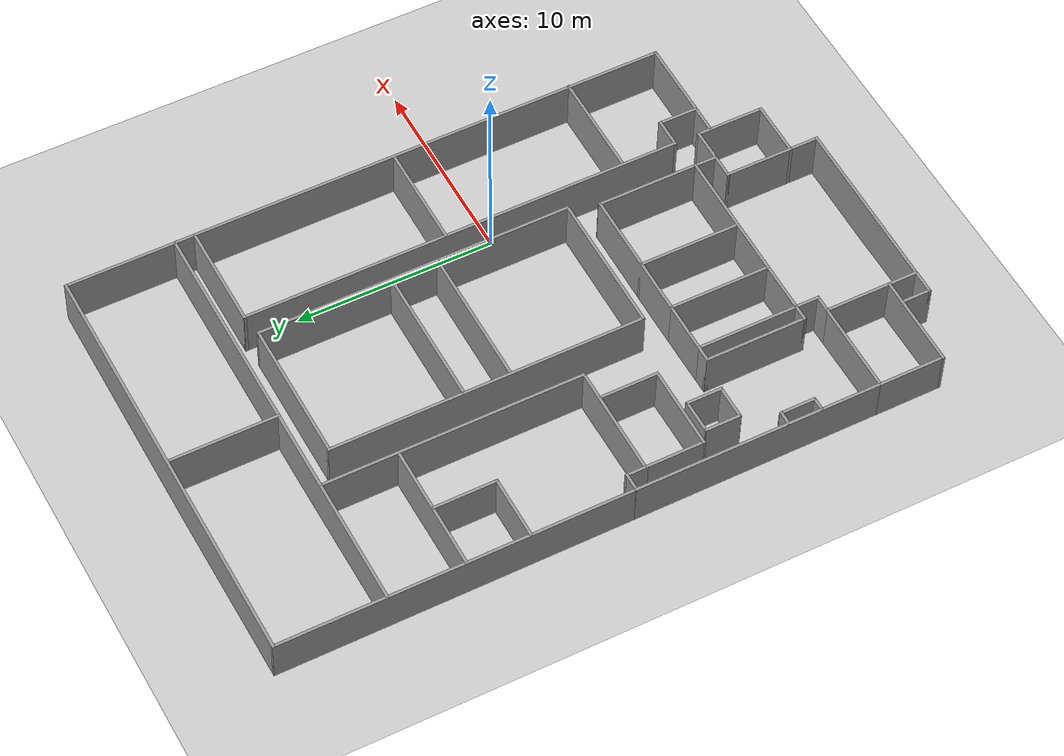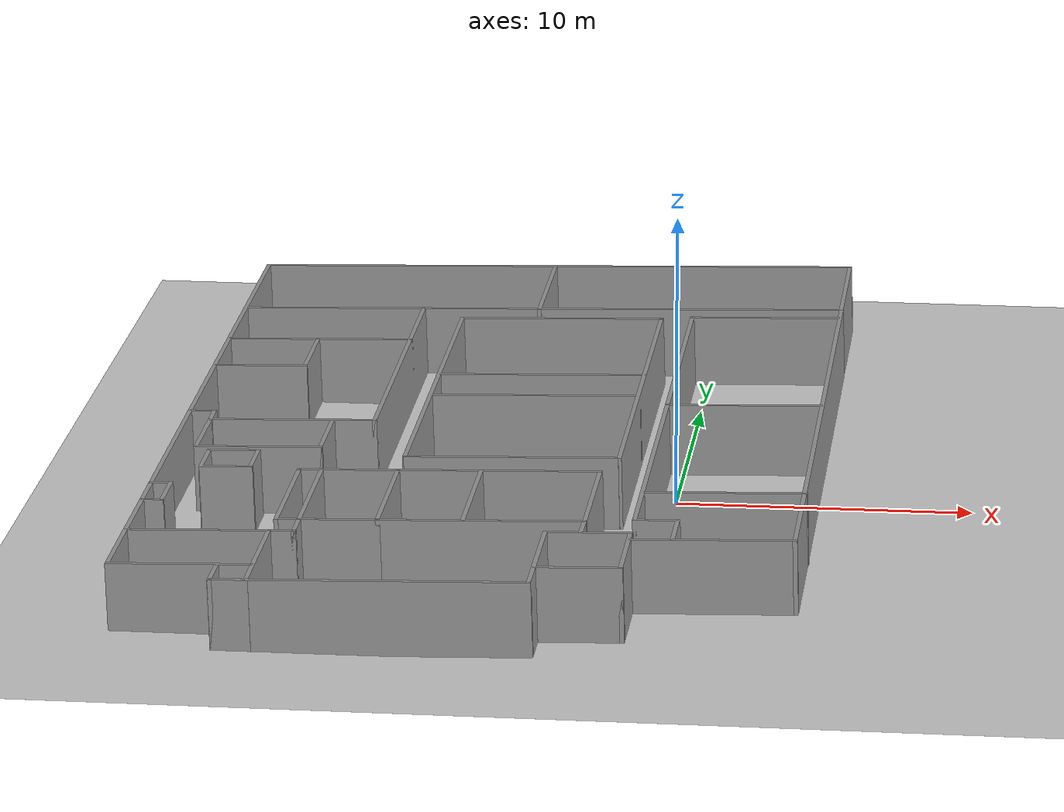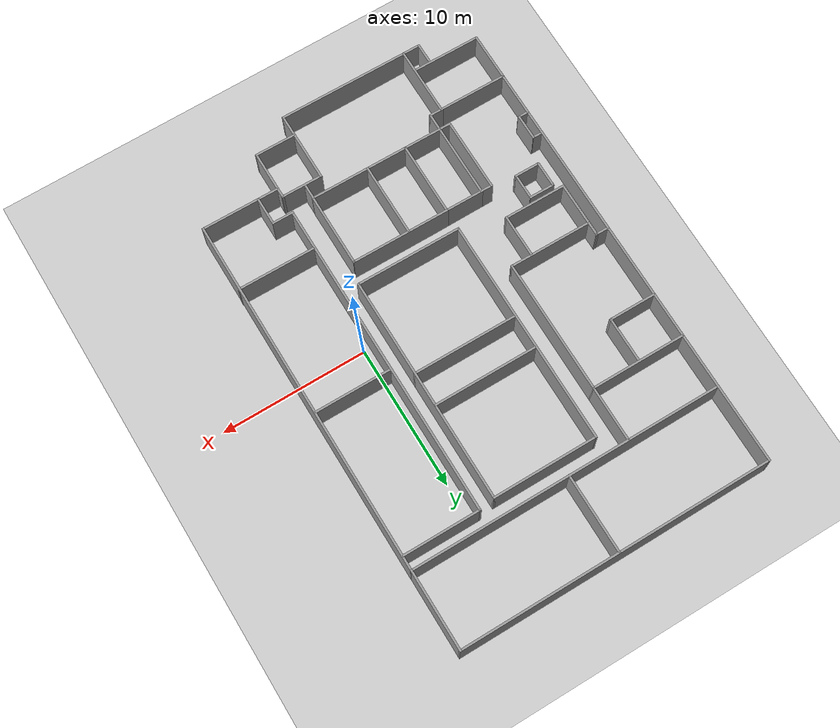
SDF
<sdf version="1.6">
 <world name="default">
  <light name="sun" type="directional">
   <pose>0 0 10 0 -0 0</pose>
   <diffuse>0.8 0.8 0.8 1</diffuse>
   <specular>0.2 0.2 0.2 1</specular>
   <attenuation>
    <range>1000</range>
    <constant>0.9</constant>
    <linear>0.01</linear>
    <quadratic>0.001</quadratic>
   </attenuation>
   <direction>-0.5 0.1 -0.9</direction>
  </light>
  <model name="ground_plane">
   <static>1</static>
   <link name="link">
    <collision name="collision">
     <geometry><plane><normal>0 0 1</normal><size>100 100</size></plane></geometry>
     <surface>
      <contact><collide_bitmask>65535</collide_bitmask></contact>
      <friction><ode><mu>100</mu><mu2>50</mu2></ode></friction>
     </surface>
    </collision>
    <visual name="visual">
     <cast_shadows>0</cast_shadows>
     <geometry><plane><normal>0 0 1</normal><size>100 100</size></plane></geometry>
     <material>
      <script><uri>file://media/materials/scripts/gazebo.material</uri><name>Gazebo/Grey</name></script>
     </material>
    </visual>
   </link>
  </model>
  <gravity>0 0 -9.8</gravity>
  <magnetic_field>6e-06 2.3e-05 -4.2e-05</magnetic_field>
  <atmosphere type="adiabatic"/>
  <physics name="default_physics" default="0" type="ode">
   <max_step_size>0.001</max_step_size>
   <real_time_factor>1</real_time_factor>
   <real_time_update_rate>1000</real_time_update_rate>
  </physics>
  <scene><ambient>0.4 0.4 0.4 1</ambient><background>0.7 0.7 0.7 1</background><shadows>1</shadows></scene>
  <audio><device>default</device></audio>
  <spherical_coordinates>
   <surface_model>EARTH_WGS84</surface_model>
   <latitude_deg>0</latitude_deg>
   <longitude_deg>0</longitude_deg>
   <elevation>0</elevation>
   <heading_deg>0</heading_deg>
  </spherical_coordinates>
  <model name="building4f">
   <pose>-6.01486 1.86504 0 0.026329 -7.5e-05 -1.56794</pose>
   <link name="Wall_0">
    <collision name="Wall_0_Collision">
     <geometry><box><size>17.68 0.15 2.5</size></box></geometry>
     <pose>0 0 1.25 0 -0 0</pose>
    </collision>
    <visual name="Wall_0_Visual">
     <pose>0 0 1.25 0 -0 0</pose>
     <geometry><box><size>17.68 0.15 2.5</size></box></geometry>
     <material>
      <script><uri>file://media/materials/scripts/gazebo.material</uri><name>Gazebo/Grey</name></script>
      <ambient>1 1 1 1</ambient>
     </material>
     <meta><layer>0</layer></meta>
    </visual>
    <pose>-8.62603 -10.8394 0 0 -0 0</pose>
   </link>
   <link name="Wall_100">
    <collision name="Wall_100_Collision">
     <geometry><box><size>9.04 0.15 2.5</size></box></geometry>
     <pose>0 0 1.25 0 -0 0</pose>
    </collision>
    <visual name="Wall_100_Visual">
     <pose>0 0 1.25 0 -0 0</pose>
     <geometry><box><size>9.04 0.15 2.5</size></box></geometry>
     <material>
      <script><uri>file://media/materials/scripts/gazebo.material</uri><name>Gazebo/Grey</name></script>
      <ambient>1 1 1 1</ambient>
     </material>
     <meta><layer>0</layer></meta>
    </visual>
    <pose>17.3842 -1.68912 0 0 -0 -1.5708</pose>
   </link>
   <link name="Wall_128">
    <collision name="Wall_128_Collision">
     <geometry><box><size>6.86 0.15 2.5</size></box></geometry>
     <pose>0 0 1.25 0 -0 0</pose>
    </collision>
    <visual name="Wall_128_Visual">
     <pose>0 0 1.25 0 -0 0</pose>
     <geometry><box><size>6.86 0.15 2.5</size></box></geometry>
     <material>
      <script><uri>file://media/materials/scripts/gazebo.material</uri><name>Gazebo/Grey</name></script>
      <ambient>1 1 1 1</ambient>
     </material>
     <meta><layer>0</layer></meta>
    </visual>
    <pose>11.5245 0.555693 0 0 -0 -1.5708</pose>
   </link>
   <link name="Wall_131">
    <collision name="Wall_131_Collision">
     <geometry><box><size>5.1 0.15 2.5</size></box></geometry>
     <pose>0 0 1.25 0 -0 0</pose>
    </collision>
    <visual name="Wall_131_Visual">
     <pose>0 0 1.25 0 -0 0</pose>
     <geometry><box><size>5.1 0.15 2.5</size></box></geometry>
     <material>
      <script><uri>file://media/materials/scripts/gazebo.material</uri><name>Gazebo/Grey</name></script>
      <ambient>1 1 1 1</ambient>
     </material>
     <meta><layer>0</layer></meta>
    </visual>
    <pose>8.9425 3.92439 0 0 -0 3.14159</pose>
   </link>
   <link name="Wall_139">
    <collision name="Wall_139_Collision">
     <geometry><box><size>6.86 0.15 2.5</size></box></geometry>
     <pose>0 0 1.25 0 -0 0</pose>
    </collision>
    <visual name="Wall_139_Visual">
     <pose>0 0 1.25 0 -0 0</pose>
     <geometry><box><size>6.86 0.15 2.5</size></box></geometry>
     <material>
      <script><uri>file://media/materials/scripts/gazebo.material</uri><name>Gazebo/Grey</name></script>
      <ambient>1 1 1 1</ambient>
     </material>
     <meta><layer>0</layer></meta>
    </visual>
    <pose>6.46732 0.538449 0 0 -0 -1.5708</pose>
   </link>
   <link name="Wall_14">
    <collision name="Wall_14_Collision">
     <geometry><box><size>13.2 0.15 2.5</size></box></geometry>
     <pose>0 0 1.25 0 -0 0</pose>
    </collision>
    <visual name="Wall_14_Visual">
     <pose>0 0 1.25 0 -0 0</pose>
     <geometry><box><size>13.2 0.15 2.5</size></box></geometry>
     <material>
      <script><uri>file://media/materials/scripts/gazebo.material</uri><name>Gazebo/Grey</name></script>
      <ambient>1 1 1 1</ambient>
     </material>
     <meta><layer>0</layer></meta>
    </visual>
    <pose>-5.37558 -4.31833 0 0 -0 0</pose>
   </link>
   <link name="Wall_143">
    <collision name="Wall_143_Collision">
     <geometry><box><size>5.2 0.15 2.5</size></box></geometry>
     <pose>0 0 1.25 0 -0 0</pose>
    </collision>
    <visual name="Wall_143_Visual">
     <pose>0 0 1.25 0 -0 0</pose>
     <geometry><box><size>5.2 0.15 2.5</size></box></geometry>
     <material>
      <script><uri>file://media/materials/scripts/gazebo.material</uri><name>Gazebo/Grey</name></script>
      <ambient>1 1 1 1</ambient>
     </material>
     <meta><layer>0</layer></meta>
    </visual>
    <pose>8.99232 -0.035757 0 0 -0 0</pose>
   </link>
   <link name="Wall_149">
    <collision name="Wall_149_Collision">
     <geometry><box><size>2.7 0.15 2.5</size></box></geometry>
     <pose>0 0 1.25 0 -0 0</pose>
    </collision>
    <visual name="Wall_149_Visual">
     <pose>0 0 1.25 0 -0 0</pose>
     <geometry><box><size>2.7 0.15 2.5</size></box></geometry>
     <material>
      <script><uri>file://media/materials/scripts/gazebo.material</uri><name>Gazebo/Grey</name></script>
      <ambient>1 1 1 1</ambient>
     </material>
     <meta><layer>0</layer></meta>
    </visual>
    <pose>11.5245 -4.07431 0 0 -0 -1.5708</pose>
   </link>
   <link name="Wall_155">
    <collision name="Wall_155_Collision">
     <geometry><box><size>1.3 0.15 2.5</size></box></geometry>
     <pose>0 0 1.25 0 -0 0</pose>
    </collision>
    <visual name="Wall_155_Visual">
     <pose>0 0 1.25 0 -0 0</pose>
     <geometry><box><size>1.3 0.15 2.5</size></box></geometry>
     <material>
      <script><uri>file://media/materials/scripts/gazebo.material</uri><name>Gazebo/Grey</name></script>
      <ambient>1 1 1 1</ambient>
     </material>
     <meta><layer>0</layer></meta>
    </visual>
    <pose>12.0993 -5.36655 0 0 -0 0</pose>
   </link>
   <link name="Wall_16">
    <collision name="Wall_16_Collision">
     <geometry><box><size>3.2 0.15 2.5</size></box></geometry>
     <pose>0 0 1.25 0 -0 0</pose>
    </collision>
    <visual name="Wall_16_Visual">
     <pose>0 0 1.25 0 -0 0</pose>
     <geometry><box><size>3.2 0.15 2.5</size></box></geometry>
     <material>
      <script><uri>file://media/materials/scripts/gazebo.material</uri><name>Gazebo/Grey</name></script>
      <ambient>1 1 1 1</ambient>
     </material>
     <meta><layer>0</layer></meta>
    </visual>
    <pose>-6.54738 -7.63646 0 0 -0 0</pose>
   </link>
   <link name="Wall_171">
    <collision name="Wall_171_Collision">
     <geometry><box><size>5.2 0.15 2.5</size></box></geometry>
     <pose>0 0 1.25 0 -0 0</pose>
    </collision>
    <visual name="Wall_171_Visual">
     <pose>0 0 1.25 0 -0 0</pose>
     <geometry><box><size>5.2 0.15 2.5</size></box></geometry>
     <material>
      <script><uri>file://media/materials/scripts/gazebo.material</uri><name>Gazebo/Grey</name></script>
      <ambient>1 1 1 1</ambient>
     </material>
     <meta><layer>0</layer></meta>
    </visual>
    <pose>8.99232 -2.81655 0 0 -0 0</pose>
   </link>
   <link name="Wall_175">
    <collision name="Wall_175_Collision">
     <geometry><box><size>12.5 0.15 2.5</size></box></geometry>
     <pose>0 0 1.25 0 -0 0</pose>
    </collision>
    <visual name="Wall_175_Visual">
     <pose>0 0 1.25 0 -0 0</pose>
     <geometry><box><size>12.5 0.15 2.5</size></box></geometry>
     <material>
      <script><uri>file://media/materials/scripts/gazebo.material</uri><name>Gazebo/Grey</name></script>
      <ambient>1 1 1 1</ambient>
     </material>
     <meta><layer>0</layer></meta>
    </visual>
    <pose>6.40903 -10.8411 0 0 -0 0</pose>
   </link>
   <link name="Wall_177">
    <collision name="Wall_177_Collision">
     <geometry><box><size>1.17274 0.15 2.5</size></box></geometry>
     <pose>0 0 1.25 0 -0 0</pose>
    </collision>
    <visual name="Wall_177_Visual">
     <pose>0 0 1.25 0 -0 0</pose>
     <geometry><box><size>1.17274 0.15 2.5</size></box></geometry>
     <material>
      <script><uri>file://media/materials/scripts/gazebo.material</uri><name>Gazebo/Grey</name></script>
      <ambient>1 1 1 1</ambient>
     </material>
     <meta><layer>0</layer></meta>
    </visual>
    <pose>0.738747 -9.98332 0 0 -0 0.002707</pose>
   </link>
   <link name="Wall_18">
    <collision name="Wall_18_Collision">
     <geometry><box><size>3.3 0.15 2.5</size></box></geometry>
     <pose>0 0 1.25 0 -0 0</pose>
    </collision>
    <visual name="Wall_18_Visual">
     <pose>0 0 1.25 0 -0 0</pose>
     <geometry><box><size>3.3 0.15 2.5</size></box></geometry>
     <material>
      <script><uri>file://media/materials/scripts/gazebo.material</uri><name>Gazebo/Grey</name></script>
      <ambient>1 1 1 1</ambient>
     </material>
     <meta><layer>0</layer></meta>
    </visual>
    <pose>-4.98556 -9.21034 0 0 -0 -1.5708</pose>
   </link>
   <link name="Wall_185">
    <collision name="Wall_185_Collision">
     <geometry><box><size>3.4 0.15 2.5</size></box></geometry>
     <pose>0 0 1.25 0 -0 0</pose>
    </collision>
    <visual name="Wall_185_Visual">
     <pose>0 0 1.25 0 -0 0</pose>
     <geometry><box><size>3.4 0.15 2.5</size></box></geometry>
     <material>
      <script><uri>file://media/materials/scripts/gazebo.material</uri><name>Gazebo/Grey</name></script>
      <ambient>1 1 1 1</ambient>
     </material>
     <meta><layer>0</layer></meta>
    </visual>
    <pose>14.3306 -10.8478 0 0 -0 0</pose>
   </link>
   <link name="Wall_190">
    <collision name="Wall_190_Collision">
     <geometry><box><size>4.75 0.15 2.5</size></box></geometry>
     <pose>0 0 1.25 0 -0 0</pose>
    </collision>
    <visual name="Wall_190_Visual">
     <pose>0 0 1.25 0 -0 0</pose>
     <geometry><box><size>4.75 0.15 2.5</size></box></geometry>
     <material>
      <script><uri>file://media/materials/scripts/gazebo.material</uri><name>Gazebo/Grey</name></script>
      <ambient>1 1 1 1</ambient>
     </material>
     <meta><layer>0</layer></meta>
    </visual>
    <pose>15.0597 -6.18302 0 0 -0 0</pose>
   </link>
   <link name="Wall_192">
    <collision name="Wall_192_Collision">
     <geometry><box><size>1 0.15 2.5</size></box></geometry>
     <pose>0 0 1.25 0 -0 0</pose>
    </collision>
    <visual name="Wall_192_Visual">
     <pose>0 0 1.25 0 -0 0</pose>
     <geometry><box><size>1 0.15 2.5</size></box></geometry>
     <material>
      <script><uri>file://media/materials/scripts/gazebo.material</uri><name>Gazebo/Grey</name></script>
      <ambient>1 1 1 1</ambient>
     </material>
     <meta><layer>0</layer></meta>
    </visual>
    <pose>12.6743 -5.79155 0 0 -0 -1.5708</pose>
   </link>
   <link name="Wall_194">
    <collision name="Wall_194_Collision">
     <geometry><box><size>4.75 0.15 2.5</size></box></geometry>
     <pose>0 0 1.25 0 -0 0</pose>
    </collision>
    <visual name="Wall_194_Visual">
     <pose>0 0 1.25 0 -0 0</pose>
     <geometry><box><size>4.75 0.15 2.5</size></box></geometry>
     <material>
      <script><uri>file://media/materials/scripts/gazebo.material</uri><name>Gazebo/Grey</name></script>
      <ambient>1 1 1 1</ambient>
     </material>
     <meta><layer>0</layer></meta>
    </visual>
    <pose>15.9556 -8.54784 0 0 -0 1.5708</pose>
   </link>
   <link name="Wall_196">
    <collision name="Wall_196_Collision">
     <geometry><box><size>1.3 0.15 2.5</size></box></geometry>
     <pose>0 0 1.25 0 -0 0</pose>
    </collision>
    <visual name="Wall_196_Visual">
     <pose>0 0 1.25 0 -0 0</pose>
     <geometry><box><size>1.3 0.15 2.5</size></box></geometry>
     <material>
      <script><uri>file://media/materials/scripts/gazebo.material</uri><name>Gazebo/Grey</name></script>
      <ambient>1 1 1 1</ambient>
     </material>
     <meta><layer>0</layer></meta>
    </visual>
    <pose>17.391 -6.75802 0 0 -0 -1.5708</pose>
   </link>
   <link name="Wall_199">
    <collision name="Wall_199_Collision">
     <geometry><box><size>1.5 0.15 2.5</size></box></geometry>
     <pose>0 0 1.25 0 -0 0</pose>
    </collision>
    <visual name="Wall_199_Visual">
     <pose>0 0 1.25 0 -0 0</pose>
     <geometry><box><size>1.5 0.15 2.5</size></box></geometry>
     <material>
      <script><uri>file://media/materials/scripts/gazebo.material</uri><name>Gazebo/Grey</name></script>
      <ambient>1 1 1 1</ambient>
     </material>
     <meta><layer>0</layer></meta>
    </visual>
    <pose>16.716 -7.33302 0 0 -0 3.14159</pose>
   </link>
   <link name="Wall_2">
    <collision name="Wall_2_Collision">
     <geometry><box><size>21.8 0.15 2.5</size></box></geometry>
     <pose>0 0 1.25 0 -0 0</pose>
    </collision>
    <visual name="Wall_2_Visual">
     <pose>0 0 1.25 0 -0 0</pose>
     <geometry><box><size>21.8 0.15 2.5</size></box></geometry>
     <material>
      <script><uri>file://media/materials/scripts/gazebo.material</uri><name>Gazebo/Grey</name></script>
      <ambient>1 1 1 1</ambient>
     </material>
     <meta><layer>0</layer></meta>
    </visual>
    <pose>-17.391 -0.01437 0 0 -0 1.5708</pose>
   </link>
   <link name="Wall_20">
    <collision name="Wall_20_Collision">
     <geometry><box><size>1.0064 0.15 2.5</size></box></geometry>
     <pose>0 0 1.25 0 -0 0</pose>
    </collision>
    <visual name="Wall_20_Visual">
     <pose>0 0 1.25 0 -0 0</pose>
     <geometry><box><size>1.0064 0.15 2.5</size></box></geometry>
     <material>
      <script><uri>file://media/materials/scripts/gazebo.material</uri><name>Gazebo/Grey</name></script>
      <ambient>1 1 1 1</ambient>
     </material>
     <meta><layer>0</layer></meta>
    </visual>
    <pose>0.234031 -10.4129 0 0 -0 1.5708</pose>
   </link>
   <link name="Wall_201">
    <collision name="Wall_201_Collision">
     <geometry><box><size>4.7 0.15 2.5</size></box></geometry>
     <pose>0 0 1.25 0 -0 0</pose>
    </collision>
    <visual name="Wall_201_Visual">
     <pose>0 0 1.25 0 -0 0</pose>
     <geometry><box><size>4.7 0.15 2.5</size></box></geometry>
     <material>
      <script><uri>file://media/materials/scripts/gazebo.material</uri><name>Gazebo/Grey</name></script>
      <ambient>1 1 1 1</ambient>
     </material>
     <meta><layer>0</layer></meta>
    </visual>
    <pose>12.6743 -8.49155 0 0 -0 -1.5708</pose>
   </link>
   <link name="Wall_203">
    <collision name="Wall_203_Collision">
     <geometry><box><size>3 0.15 2.5</size></box></geometry>
     <pose>0 0 1.25 0 -0 0</pose>
    </collision>
    <visual name="Wall_203_Visual">
     <pose>0 0 1.25 0 -0 0</pose>
     <geometry><box><size>3 0.15 2.5</size></box></geometry>
     <material>
      <script><uri>file://media/materials/scripts/gazebo.material</uri><name>Gazebo/Grey</name></script>
      <ambient>1 1 1 1</ambient>
     </material>
     <meta><layer>0</layer></meta>
    </visual>
    <pose>2.67511 -9.98193 0 0 -0 0</pose>
   </link>
   <link name="Wall_205">
    <collision name="Wall_205_Collision">
     <geometry><box><size>4.37 0.15 2.5</size></box></geometry>
     <pose>0 0 1.25 0 -0 0</pose>
    </collision>
    <visual name="Wall_205_Visual">
     <pose>0 0 1.25 0 -0 0</pose>
     <geometry><box><size>4.37 0.15 2.5</size></box></geometry>
     <material>
      <script><uri>file://media/materials/scripts/gazebo.material</uri><name>Gazebo/Grey</name></script>
      <ambient>1 1 1 1</ambient>
     </material>
     <meta><layer>0</layer></meta>
    </visual>
    <pose>4.10011 -7.87193 0 0 -0 1.5708</pose>
   </link>
   <link name="Wall_207">
    <collision name="Wall_207_Collision">
     <geometry><box><size>3 0.15 2.5</size></box></geometry>
     <pose>0 0 1.25 0 -0 0</pose>
    </collision>
    <visual name="Wall_207_Visual">
     <pose>0 0 1.25 0 -0 0</pose>
     <geometry><box><size>3 0.15 2.5</size></box></geometry>
     <material>
      <script><uri>file://media/materials/scripts/gazebo.material</uri><name>Gazebo/Grey</name></script>
      <ambient>1 1 1 1</ambient>
     </material>
     <meta><layer>0</layer></meta>
    </visual>
    <pose>2.67511 -5.76193 0 0 -0 3.14159</pose>
   </link>
   <link name="Wall_211">
    <collision name="Wall_211_Collision">
     <geometry><box><size>2.7 0.15 2.5</size></box></geometry>
     <pose>0 0 1.25 0 -0 0</pose>
    </collision>
    <visual name="Wall_211_Visual">
     <pose>0 0 1.25 0 -0 0</pose>
     <geometry><box><size>2.7 0.15 2.5</size></box></geometry>
     <material>
      <script><uri>file://media/materials/scripts/gazebo.material</uri><name>Gazebo/Grey</name></script>
      <ambient>1 1 1 1</ambient>
     </material>
     <meta><layer>0</layer></meta>
    </visual>
    <pose>6.46732 -4.09155 0 0 -0 -1.5708</pose>
   </link>
   <link name="Wall_213">
    <collision name="Wall_213_Collision">
     <geometry><box><size>5.207 0.15 2.5</size></box></geometry>
     <pose>0 0 1.25 0 -0 0</pose>
    </collision>
    <visual name="Wall_213_Visual">
     <pose>0 0 1.25 0 -0 0</pose>
     <geometry><box><size>5.207 0.15 2.5</size></box></geometry>
     <material>
      <script><uri>file://media/materials/scripts/gazebo.material</uri><name>Gazebo/Grey</name></script>
      <ambient>1 1 1 1</ambient>
     </material>
     <meta><layer>0</layer></meta>
    </visual>
    <pose>8.99582 -5.36655 0 0 -0 0</pose>
   </link>
   <link name="Wall_222">
    <collision name="Wall_222_Collision">
     <geometry><box><size>1.8 0.15 2.5</size></box></geometry>
     <pose>0 0 1.25 0 -0 0</pose>
    </collision>
    <visual name="Wall_222_Visual">
     <pose>0 0 1.25 0 -0 0</pose>
     <geometry><box><size>1.8 0.15 2.5</size></box></geometry>
     <material>
      <script><uri>file://media/materials/scripts/gazebo.material</uri><name>Gazebo/Grey</name></script>
      <ambient>1 1 1 1</ambient>
     </material>
     <meta><layer>0</layer></meta>
    </visual>
    <pose>4.49659 -8.63754 0 0 -0 -1.5708</pose>
   </link>
   <link name="Wall_224">
    <collision name="Wall_224_Collision">
     <geometry><box><size>1.8 0.15 2.5</size></box></geometry>
     <pose>0 0 1.25 0 -0 0</pose>
    </collision>
    <visual name="Wall_224_Visual">
     <pose>0 0 1.25 0 -0 0</pose>
     <geometry><box><size>1.8 0.15 2.5</size></box></geometry>
     <material>
      <script><uri>file://media/materials/scripts/gazebo.material</uri><name>Gazebo/Grey</name></script>
      <ambient>1 1 1 1</ambient>
     </material>
     <meta><layer>0</layer></meta>
    </visual>
    <pose>5.3676 -7.80173 0 0 -0 0</pose>
   </link>
   <link name="Wall_226">
    <collision name="Wall_226_Collision">
     <geometry><box><size>1.8 0.15 2.5</size></box></geometry>
     <pose>0 0 1.25 0 -0 0</pose>
    </collision>
    <visual name="Wall_226_Visual">
     <pose>0 0 1.25 0 -0 0</pose>
     <geometry><box><size>1.8 0.15 2.5</size></box></geometry>
     <material>
      <script><uri>file://media/materials/scripts/gazebo.material</uri><name>Gazebo/Grey</name></script>
      <ambient>1 1 1 1</ambient>
     </material>
     <meta><layer>0</layer></meta>
    </visual>
    <pose>5.36838 -9.46714 0 0 -0 0</pose>
   </link>
   <link name="Wall_228">
    <collision name="Wall_228_Collision">
     <geometry><box><size>1.8 0.15 2.5</size></box></geometry>
     <pose>0 0 1.25 0 -0 0</pose>
    </collision>
    <visual name="Wall_228_Visual">
     <pose>0 0 1.25 0 -0 0</pose>
     <geometry><box><size>1.8 0.15 2.5</size></box></geometry>
     <material>
      <script><uri>file://media/materials/scripts/gazebo.material</uri><name>Gazebo/Grey</name></script>
      <ambient>1 1 1 1</ambient>
     </material>
     <meta><layer>0</layer></meta>
    </visual>
    <pose>6.22538 -8.61853 0 0 -0 -1.5708</pose>
   </link>
   <link name="Wall_230">
    <collision name="Wall_230_Collision">
     <geometry><box><size>0.9 0.15 2.5</size></box></geometry>
     <pose>0 0 1.25 0 -0 0</pose>
    </collision>
    <visual name="Wall_230_Visual">
     <pose>0 0 1.25 0 -0 0</pose>
     <geometry><box><size>0.9 0.15 2.5</size></box></geometry>
     <material>
      <script><uri>file://media/materials/scripts/gazebo.material</uri><name>Gazebo/Grey</name></script>
      <ambient>1 1 1 1</ambient>
     </material>
     <meta><layer>0</layer></meta>
    </visual>
    <pose>6.46732 -5.74155 0 0 -0 -1.5708</pose>
   </link>
   <link name="Wall_232">
    <collision name="Wall_232_Collision">
     <geometry><box><size>5.207 0.15 2.5</size></box></geometry>
     <pose>0 0 1.25 0 -0 0</pose>
    </collision>
    <visual name="Wall_232_Visual">
     <pose>0 0 1.25 0 -0 0</pose>
     <geometry><box><size>5.207 0.15 2.5</size></box></geometry>
     <material>
      <script><uri>file://media/materials/scripts/gazebo.material</uri><name>Gazebo/Grey</name></script>
      <ambient>1 1 1 1</ambient>
     </material>
     <meta><layer>0</layer></meta>
    </visual>
    <pose>8.99582 -6.11655 0 0 -0 0</pose>
   </link>
   <link name="Wall_234">
    <collision name="Wall_234_Collision">
     <geometry><box><size>0.9 0.15 2.5</size></box></geometry>
     <pose>0 0 1.25 0 -0 0</pose>
    </collision>
    <visual name="Wall_234_Visual">
     <pose>0 0 1.25 0 -0 0</pose>
     <geometry><box><size>0.9 0.15 2.5</size></box></geometry>
     <material>
      <script><uri>file://media/materials/scripts/gazebo.material</uri><name>Gazebo/Grey</name></script>
      <ambient>1 1 1 1</ambient>
     </material>
     <meta><layer>0</layer></meta>
    </visual>
    <pose>11.5243 -5.74155 0 0 -0 1.5708</pose>
   </link>
   <link name="Wall_255">
    <collision name="Wall_255_Collision">
     <geometry><box><size>15.95 0.15 2.5</size></box></geometry>
     <pose>0 0 1.25 0 -0 0</pose>
    </collision>
    <visual name="Wall_255_Visual">
     <pose>0 0 1.25 0 -0 0</pose>
     <geometry><box><size>15.95 0.15 2.5</size></box></geometry>
     <material>
      <script><uri>file://media/materials/scripts/gazebo.material</uri><name>Gazebo/Grey</name></script>
      <ambient>1 1 1 1</ambient>
     </material>
     <meta><layer>0</layer></meta>
    </visual>
    <pose>-2.87929 4.42125 0 0 -0 0</pose>
   </link>
   <link name="Wall_257">
    <collision name="Wall_257_Collision">
     <geometry><box><size>15.95 0.15 2.5</size></box></geometry>
     <pose>0 0 1.25 0 -0 0</pose>
    </collision>
    <visual name="Wall_257_Visual">
     <pose>0 0 1.25 0 -0 0</pose>
     <geometry><box><size>15.95 0.15 2.5</size></box></geometry>
     <material>
      <script><uri>file://media/materials/scripts/gazebo.material</uri><name>Gazebo/Grey</name></script>
      <ambient>1 1 1 1</ambient>
     </material>
     <meta><layer>0</layer></meta>
    </visual>
    <pose>-2.87929 -2.77083 0 0 -0 0</pose>
   </link>
   <link name="Wall_259">
    <collision name="Wall_259_Collision">
     <geometry><box><size>7.2 0.15 2.5</size></box></geometry>
     <pose>0 0 1.25 0 -0 0</pose>
    </collision>
    <visual name="Wall_259_Visual">
     <pose>0 0 1.25 0 -0 0</pose>
     <geometry><box><size>7.2 0.15 2.5</size></box></geometry>
     <material>
      <script><uri>file://media/materials/scripts/gazebo.material</uri><name>Gazebo/Grey</name></script>
      <ambient>1 1 1 1</ambient>
     </material>
     <meta><layer>0</layer></meta>
    </visual>
    <pose>-10.7793 0.896249 0 0 -0 -1.5708</pose>
   </link>
   <link name="Wall_26">
    <collision name="Wall_26_Collision">
     <geometry><box><size>5.58 0.15 2.5</size></box></geometry>
     <pose>0 0 1.25 0 -0 0</pose>
    </collision>
    <visual name="Wall_26_Visual">
     <pose>0 0 1.25 0 -0 0</pose>
     <geometry><box><size>5.58 0.15 2.5</size></box></geometry>
     <material>
      <script><uri>file://media/materials/scripts/gazebo.material</uri><name>Gazebo/Grey</name></script>
      <ambient>1 1 1 1</ambient>
     </material>
     <meta><layer>0</layer></meta>
    </visual>
    <pose>-14.676 10.8106 0 0 -0 0</pose>
   </link>
   <link name="Wall_261">
    <collision name="Wall_261_Collision">
     <geometry><box><size>7.2 0.15 2.5</size></box></geometry>
     <pose>0 0 1.25 0 -0 0</pose>
    </collision>
    <visual name="Wall_261_Visual">
     <pose>0 0 1.25 0 -0 0</pose>
     <geometry><box><size>7.2 0.15 2.5</size></box></geometry>
     <material>
      <script><uri>file://media/materials/scripts/gazebo.material</uri><name>Gazebo/Grey</name></script>
      <ambient>1 1 1 1</ambient>
     </material>
     <meta><layer>0</layer></meta>
    </visual>
    <pose>5.03612 0.788905 0 0 -0 -1.5708</pose>
   </link>
   <link name="Wall_268">
    <collision name="Wall_268_Collision">
     <geometry><box><size>7.2 0.15 2.5</size></box></geometry>
     <pose>0 0 1.25 0 -0 0</pose>
    </collision>
    <visual name="Wall_268_Visual">
     <pose>0 0 1.25 0 -0 0</pose>
     <geometry><box><size>7.2 0.15 2.5</size></box></geometry>
     <material>
      <script><uri>file://media/materials/scripts/gazebo.material</uri><name>Gazebo/Grey</name></script>
      <ambient>1 1 1 1</ambient>
     </material>
     <meta><layer>0</layer></meta>
    </visual>
    <pose>-4.08816 0.860468 0 0 -0 -1.5708</pose>
   </link>
   <link name="Wall_270">
    <collision name="Wall_270_Collision">
     <geometry><box><size>7.2 0.15 2.5</size></box></geometry>
     <pose>0 0 1.25 0 -0 0</pose>
    </collision>
    <visual name="Wall_270_Visual">
     <pose>0 0 1.25 0 -0 0</pose>
     <geometry><box><size>7.2 0.15 2.5</size></box></geometry>
     <material>
      <script><uri>file://media/materials/scripts/gazebo.material</uri><name>Gazebo/Grey</name></script>
      <ambient>1 1 1 1</ambient>
     </material>
     <meta><layer>0</layer></meta>
    </visual>
    <pose>-1.72658 0.8973 0 0 -0 1.5708</pose>
   </link>
   <link name="Wall_272">
    <collision name="Wall_272_Collision">
     <geometry><box><size>5.7 0.15 2.5</size></box></geometry>
     <pose>0 0 1.25 0 -0 0</pose>
    </collision>
    <visual name="Wall_272_Visual">
     <pose>0 0 1.25 0 -0 0</pose>
     <geometry><box><size>5.7 0.15 2.5</size></box></geometry>
     <material>
      <script><uri>file://media/materials/scripts/gazebo.material</uri><name>Gazebo/Grey</name></script>
      <ambient>1 1 1 1</ambient>
     </material>
     <meta><layer>0</layer></meta>
    </visual>
    <pose>1.14942 -7.09333 0 0 -0 -1.5708</pose>
   </link>
   <link name="Wall_274">
    <collision name="Wall_274_Collision">
     <geometry><box><size>1.8 0.15 2.5</size></box></geometry>
     <pose>0 0 1.25 0 -0 0</pose>
    </collision>
    <visual name="Wall_274_Visual">
     <pose>0 0 1.25 0 -0 0</pose>
     <geometry><box><size>1.8 0.15 2.5</size></box></geometry>
     <material>
      <script><uri>file://media/materials/scripts/gazebo.material</uri><name>Gazebo/Grey</name></script>
      <ambient>1 1 1 1</ambient>
     </material>
     <meta><layer>0</layer></meta>
    </visual>
    <pose>8.77861 -10.1859 0 0 -0 0</pose>
   </link>
   <link name="Wall_276">
    <collision name="Wall_276_Collision">
     <geometry><box><size>0.75 0.15 2.5</size></box></geometry>
     <pose>0 0 1.25 0 -0 0</pose>
    </collision>
    <visual name="Wall_276_Visual">
     <pose>0 0 1.25 0 -0 0</pose>
     <geometry><box><size>0.75 0.15 2.5</size></box></geometry>
     <material>
      <script><uri>file://media/materials/scripts/gazebo.material</uri><name>Gazebo/Grey</name></script>
      <ambient>1 1 1 1</ambient>
     </material>
     <meta><layer>0</layer></meta>
    </visual>
    <pose>9.64926 -10.5026 0 0 -0 -1.5708</pose>
   </link>
   <link name="Wall_279">
    <collision name="Wall_279_Collision">
     <geometry><box><size>0.75 0.15 2.5</size></box></geometry>
     <pose>0 0 1.25 0 -0 0</pose>
    </collision>
    <visual name="Wall_279_Visual">
     <pose>0 0 1.25 0 -0 0</pose>
     <geometry><box><size>0.75 0.15 2.5</size></box></geometry>
     <material>
      <script><uri>file://media/materials/scripts/gazebo.material</uri><name>Gazebo/Grey</name></script>
      <ambient>1 1 1 1</ambient>
     </material>
     <meta><layer>0</layer></meta>
    </visual>
    <pose>7.95123 -10.523 0 0 -0 -1.5708</pose>
   </link>
   <link name="Wall_30">
    <collision name="Wall_30_Collision">
     <geometry><box><size>21.75 0.15 2.5</size></box></geometry>
     <pose>0 0 1.25 0 -0 0</pose>
    </collision>
    <visual name="Wall_30_Visual">
     <pose>0 0 1.25 0 -0 0</pose>
     <geometry><box><size>21.75 0.15 2.5</size></box></geometry>
     <material>
      <script><uri>file://media/materials/scripts/gazebo.material</uri><name>Gazebo/Grey</name></script>
      <ambient>1 1 1 1</ambient>
     </material>
     <meta><layer>0</layer></meta>
    </visual>
    <pose>-11.961 0.01063 0 0 -0 -1.5708</pose>
   </link>
   <link name="Wall_34">
    <collision name="Wall_34_Collision">
     <geometry><box><size>25.26 0.15 2.5</size></box></geometry>
     <pose>0 0 1.25 0 -0 0</pose>
    </collision>
    <visual name="Wall_34_Visual">
     <pose>0 0 1.25 0 -0 0</pose>
     <geometry><box><size>25.26 0.15 2.5</size></box></geometry>
     <material>
      <script><uri>file://media/materials/scripts/gazebo.material</uri><name>Gazebo/Grey</name></script>
      <ambient>1 1 1 1</ambient>
     </material>
     <meta><layer>0</layer></meta>
    </visual>
    <pose>0.672249 10.8179 0 0 -0 0</pose>
   </link>
   <link name="Wall_4">
    <collision name="Wall_4_Collision">
     <geometry><box><size>5.58 0.15 2.5</size></box></geometry>
     <pose>0 0 1.25 0 -0 0</pose>
    </collision>
    <visual name="Wall_4_Visual">
     <pose>0 0 1.25 0 -0 0</pose>
     <geometry><box><size>5.58 0.15 2.5</size></box></geometry>
     <material>
      <script><uri>file://media/materials/scripts/gazebo.material</uri><name>Gazebo/Grey</name></script>
      <ambient>1 1 1 1</ambient>
     </material>
     <meta><layer>0</layer></meta>
    </visual>
    <pose>-14.6694 -0.103991 0 0 -0 0</pose>
   </link>
   <link name="Wall_46">
    <collision name="Wall_46_Collision">
     <geometry><box><size>5.37 0.15 2.5</size></box></geometry>
     <pose>0 0 1.25 0 -0 0</pose>
    </collision>
    <visual name="Wall_46_Visual">
     <pose>0 0 1.25 0 -0 0</pose>
     <geometry><box><size>5.37 0.15 2.5</size></box></geometry>
     <material>
      <script><uri>file://media/materials/scripts/gazebo.material</uri><name>Gazebo/Grey</name></script>
      <ambient>1 1 1 1</ambient>
     </material>
     <meta><layer>0</layer></meta>
    </visual>
    <pose>13.2272 8.20794 0 0 -0 -1.5708</pose>
   </link>
   <link name="Wall_52">
    <collision name="Wall_52_Collision">
     <geometry><box><size>5.37 0.15 2.5</size></box></geometry>
     <pose>0 0 1.25 0 -0 0</pose>
    </collision>
    <visual name="Wall_52_Visual">
     <pose>0 0 1.25 0 -0 0</pose>
     <geometry><box><size>5.37 0.15 2.5</size></box></geometry>
     <material>
      <script><uri>file://media/materials/scripts/gazebo.material</uri><name>Gazebo/Grey</name></script>
      <ambient>1 1 1 1</ambient>
     </material>
     <meta><layer>0</layer></meta>
    </visual>
    <pose>-10.9647 8.12956 0 0 -0 -1.5708</pose>
   </link>
   <link name="Wall_54">
    <collision name="Wall_54_Collision">
     <geometry><box><size>5.37 0.15 2.5</size></box></geometry>
     <pose>0 0 1.25 0 -0 0</pose>
    </collision>
    <visual name="Wall_54_Visual">
     <pose>0 0 1.25 0 -0 0</pose>
     <geometry><box><size>5.37 0.15 2.5</size></box></geometry>
     <material>
      <script><uri>file://media/materials/scripts/gazebo.material</uri><name>Gazebo/Grey</name></script>
      <ambient>1 1 1 1</ambient>
     </material>
     <meta><layer>0</layer></meta>
    </visual>
    <pose>-0.733302 8.14812 0 0 -0 -1.5708</pose>
   </link>
   <link name="Wall_56">
    <collision name="Wall_56_Collision">
     <geometry><box><size>5.37 0.15 2.5</size></box></geometry>
     <pose>0 0 1.25 0 -0 0</pose>
    </collision>
    <visual name="Wall_56_Visual">
     <pose>0 0 1.25 0 -0 0</pose>
     <geometry><box><size>5.37 0.15 2.5</size></box></geometry>
     <material>
      <script><uri>file://media/materials/scripts/gazebo.material</uri><name>Gazebo/Grey</name></script>
      <ambient>1 1 1 1</ambient>
     </material>
     <meta><layer>0</layer></meta>
    </visual>
    <pose>8.54829 8.23784 0 0 -0 -1.5708</pose>
   </link>
   <link name="Wall_58">
    <collision name="Wall_58_Collision">
     <geometry><box><size>22.44 0.15 2.5</size></box></geometry>
     <pose>0 0 1.25 0 -0 0</pose>
    </collision>
    <visual name="Wall_58_Visual">
     <pose>0 0 1.25 0 -0 0</pose>
     <geometry><box><size>22.44 0.15 2.5</size></box></geometry>
     <material>
      <script><uri>file://media/materials/scripts/gazebo.material</uri><name>Gazebo/Grey</name></script>
      <ambient>1 1 1 1</ambient>
     </material>
     <meta><layer>0</layer></meta>
    </visual>
    <pose>0.180291 5.51956 0 0 -0 0</pose>
   </link>
   <link name="Wall_73">
    <collision name="Wall_73_Collision">
     <geometry><box><size>3.51 0.15 2.5</size></box></geometry>
     <pose>0 0 1.25 0 -0 0</pose>
    </collision>
    <visual name="Wall_73_Visual">
     <pose>0 0 1.25 0 -0 0</pose>
     <geometry><box><size>3.51 0.15 2.5</size></box></geometry>
     <material>
      <script><uri>file://media/materials/scripts/gazebo.material</uri><name>Gazebo/Grey</name></script>
      <ambient>1 1 1 1</ambient>
     </material>
     <meta><layer>0</layer></meta>
    </visual>
    <pose>14.2732 5.50588 0 0 -0 0</pose>
   </link>
   <link name="Wall_75">
    <collision name="Wall_75_Collision">
     <geometry><box><size>2.90017 0.15 2.5</size></box></geometry>
     <pose>0 0 1.25 0 -0 0</pose>
    </collision>
    <visual name="Wall_75_Visual">
     <pose>0 0 1.25 0 -0 0</pose>
     <geometry><box><size>2.90017 0.15 2.5</size></box></geometry>
     <material>
      <script><uri>file://media/materials/scripts/gazebo.material</uri><name>Gazebo/Grey</name></script>
      <ambient>1 1 1 1</ambient>
     </material>
     <meta><layer>0</layer></meta>
    </visual>
    <pose>15.9532 4.13088 0 0 -0 -1.5708</pose>
   </link>
   <link name="Wall_8">
    <collision name="Wall_8_Collision">
     <geometry><box><size>6.6 0.15 2.5</size></box></geometry>
     <pose>0 0 1.25 0 -0 0</pose>
    </collision>
    <visual name="Wall_8_Visual">
     <pose>0 0 1.25 0 -0 0</pose>
     <geometry><box><size>6.6 0.15 2.5</size></box></geometry>
     <material>
      <script><uri>file://media/materials/scripts/gazebo.material</uri><name>Gazebo/Grey</name></script>
      <ambient>1 1 1 1</ambient>
     </material>
     <meta><layer>0</layer></meta>
    </visual>
    <pose>-8.1386 -7.54333 0 0 -0 -1.5708</pose>
   </link>
   <link name="Wall_81">
    <collision name="Wall_81_Collision">
     <geometry><box><size>2.9 0.15 2.5</size></box></geometry>
     <pose>0 0 1.25 0 -0 0</pose>
    </collision>
    <visual name="Wall_81_Visual">
     <pose>0 0 1.25 0 -0 0</pose>
     <geometry><box><size>2.9 0.15 2.5</size></box></geometry>
     <material>
      <script><uri>file://media/materials/scripts/gazebo.material</uri><name>Gazebo/Grey</name></script>
      <ambient>1 1 1 1</ambient>
     </material>
     <meta><layer>0</layer></meta>
    </visual>
    <pose>12.5932 4.13088 0 0 -0 -1.5708</pose>
   </link>
   <link name="Wall_83">
    <collision name="Wall_83_Collision">
     <geometry><box><size>3.51 0.15 2.5</size></box></geometry>
     <pose>0 0 1.25 0 -0 0</pose>
    </collision>
    <visual name="Wall_83_Visual">
     <pose>0 0 1.25 0 -0 0</pose>
     <geometry><box><size>3.51 0.15 2.5</size></box></geometry>
     <material>
      <script><uri>file://media/materials/scripts/gazebo.material</uri><name>Gazebo/Grey</name></script>
      <ambient>1 1 1 1</ambient>
     </material>
     <meta><layer>0</layer></meta>
    </visual>
    <pose>14.2732 2.75588 0 0 -0 0</pose>
   </link>
   <link name="Wall_85">
    <collision name="Wall_85_Collision">
     <geometry><box><size>1.19 0.15 2.5</size></box></geometry>
     <pose>0 0 1.25 0 -0 0</pose>
    </collision>
    <visual name="Wall_85_Visual">
     <pose>0 0 1.25 0 -0 0</pose>
     <geometry><box><size>1.19 0.15 2.5</size></box></geometry>
     <material>
      <script><uri>file://media/materials/scripts/gazebo.material</uri><name>Gazebo/Grey</name></script>
      <ambient>1 1 1 1</ambient>
     </material>
     <meta><layer>0</layer></meta>
    </visual>
    <pose>12.0445 3.91069 0 0 -0 0</pose>
   </link>
   <link name="Wall_91">
    <collision name="Wall_91_Collision">
     <geometry><box><size>1.55 0.15 2.5</size></box></geometry>
     <pose>0 0 1.25 0 -0 0</pose>
    </collision>
    <visual name="Wall_91_Visual">
     <pose>0 0 1.25 0 -0 0</pose>
     <geometry><box><size>1.55 0.15 2.5</size></box></geometry>
     <material>
      <script><uri>file://media/materials/scripts/gazebo.material</uri><name>Gazebo/Grey</name></script>
      <ambient>1 1 1 1</ambient>
     </material>
     <meta><layer>0</layer></meta>
    </visual>
    <pose>16.6842 2.75588 0 0 -0 0</pose>
   </link>
   <link name="Wall_96">
    <collision name="Wall_96_Collision">
     <geometry><box><size>1.54 0.15 2.5</size></box></geometry>
     <pose>0 0 1.25 0 -0 0</pose>
    </collision>
    <visual name="Wall_96_Visual">
     <pose>0 0 1.25 0 -0 0</pose>
     <geometry><box><size>1.54 0.15 2.5</size></box></geometry>
     <material>
      <script><uri>file://media/materials/scripts/gazebo.material</uri><name>Gazebo/Grey</name></script>
      <ambient>1 1 1 1</ambient>
     </material>
     <meta><layer>0</layer></meta>
    </visual>
    <pose>11.3253 6.21455 0 0 -0 1.5708</pose>
   </link>
   <link name="Wall_98">
    <collision name="Wall_98_Collision">
     <geometry><box><size>2 0.15 2.5</size></box></geometry>
     <pose>0 0 1.25 0 -0 0</pose>
    </collision>
    <visual name="Wall_98_Visual">
     <pose>0 0 1.25 0 -0 0</pose>
     <geometry><box><size>2 0.15 2.5</size></box></geometry>
     <material>
      <script><uri>file://media/materials/scripts/gazebo.material</uri><name>Gazebo/Grey</name></script>
      <ambient>1 1 1 1</ambient>
     </material>
     <meta><layer>0</layer></meta>
    </visual>
    <pose>12.2503 6.90956 0 0 -0 0</pose>
   </link>
   <static>1</static>
  </model>
 </world>
</sdf>
